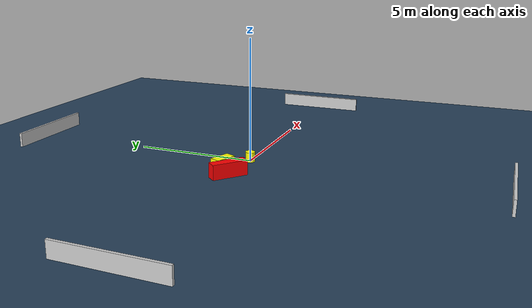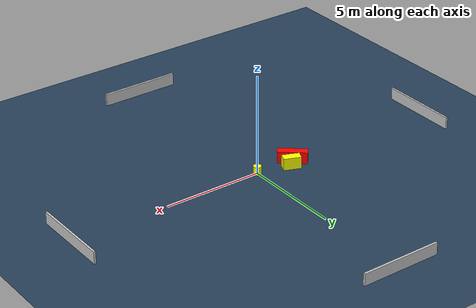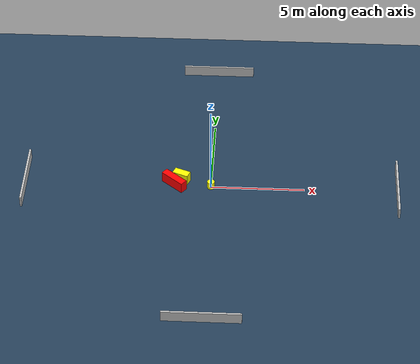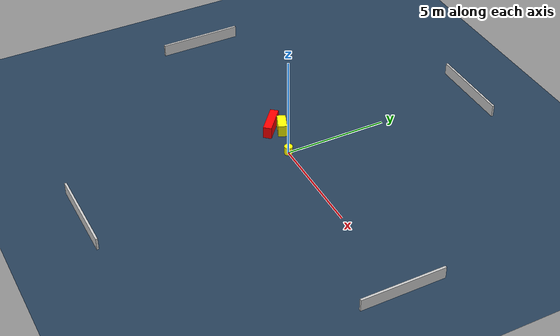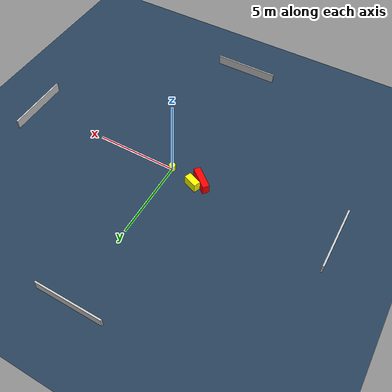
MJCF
<?xml version="1.0" ?>
<mujoco model="generated_environment">
  <option timestep="0.01" integrator="RK4" cone="elliptic"/>
  <default>
    <geom density="1"/>
  </default>
  <asset>
    <texture builtin="gradient" height="3072" name="skybox" rgb1="0.3 0.5 0.7" rgb2="0 0 0" type="skybox" width="512"/>
    <texture builtin="checker" height="300" name="groundplane" rgb1="0.2 0.3 0.4" rgb2="0.1 0.2 0.3" type="2d" width="300"/>
    <material name="groundplane" reflectance="0.2" texrepeat="5 5" texture="groundplane"/>
  </asset>
  <worldbody>
    <light dir="0 0 -1" directional="true" pos="0 0 1.5"/>
    <geom condim="3" friction="0.5 0.005 0.001" material="groundplane" name="floor" pos="0 0 0" size="0 0 0.05" type="plane"/>
    <body name="walls">
      <geom name="wall_1" condim="4" pos="-10.0 0.0 0.3" rgba="0.800000011920929 0.800000011920929 0.800000011920929 1.0" size="0.05 2.0 0.3" type="box"/>
      <geom name="wall_2" condim="4" pos="10.0 0.0 0.3" rgba="0.800000011920929 0.800000011920929 0.800000011920929 1.0" size="0.05 2.0 0.3" type="box"/>
      <geom name="wall_3" condim="4" pos="0.0 -10.0 0.3" rgba="0.800000011920929 0.800000011920929 0.800000011920929 1.0" size="2.0 0.05 0.3" type="box"/>
      <geom name="wall_4" condim="4" pos="0.0 10.0 0.3" rgba="0.800000011920929 0.800000011920929 0.800000011920929 1.0" size="2.0 0.05 0.3" type="box"/>
    </body>
    <body name="robot">
      <joint name="joint_x" type="slide" pos="0 0 0" axis="1 0 0"/>
      <joint name="joint_y" type="slide" pos="0 0 0" axis="0 1 0"/>
      <geom name="robot" type="cylinder" pos="0.0 0.0 0.2" size="0.2 0.2 0.0" mass="5.0" friction="1.0 0.005 0.0001" condim="4" rgba="1.0 1.0 0.0 1.0"/>
    </body>
    <body name="obstacle_1_movable">
      <geom name="obstacle_1_movable" condim="4" pos="-1.6148963309791844 0.48508336418890896 0.3" euler="0 0 67.89059882750647" friction="0.0 0.005 0.001" rgba="1.0 1.0 0.0 1.0" size="0.2113315642198469 0.4340588544917996 0.3" type="box" mass="0.1"/>
      <joint type="free"/>
    </body>
    <body name="obstacle_2_static">
      <geom name="obstacle_2_static" condim="4" pos="-1.9836704234192915 0.09104084374847618 0.3" euler="0 0 319.64416961915725" friction="0.0 0.005 0.001" rgba="1.0 0.0 0.0 1.0" size="0.7198739144196791 0.20125342583604178 0.3" type="box"/>
    </body>
  </worldbody>
  <actuator>
    <motor name="actuator_x" joint="joint_x" gear="1" ctrlrange="-1 1"/>
    <motor name="actuator_y" joint="joint_y" gear="1" ctrlrange="-1 1"/>
  </actuator>
</mujoco>
